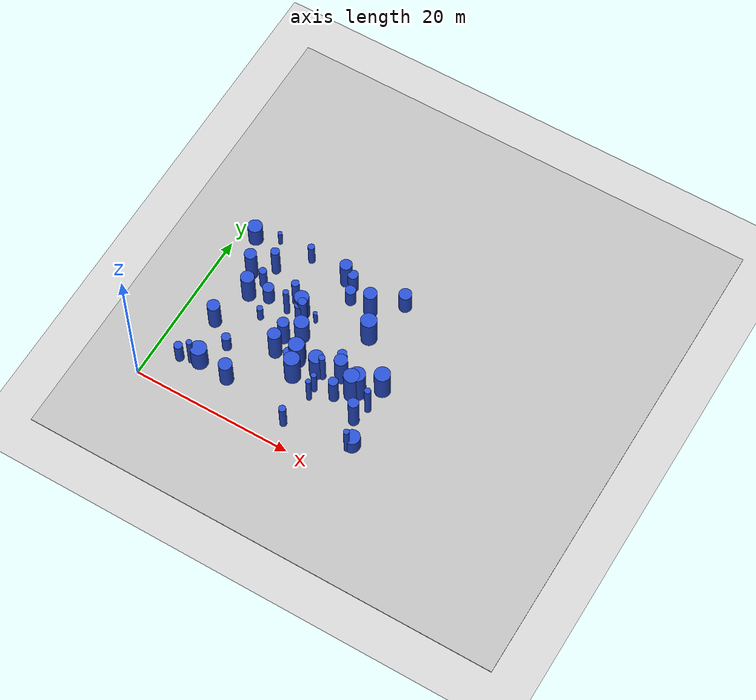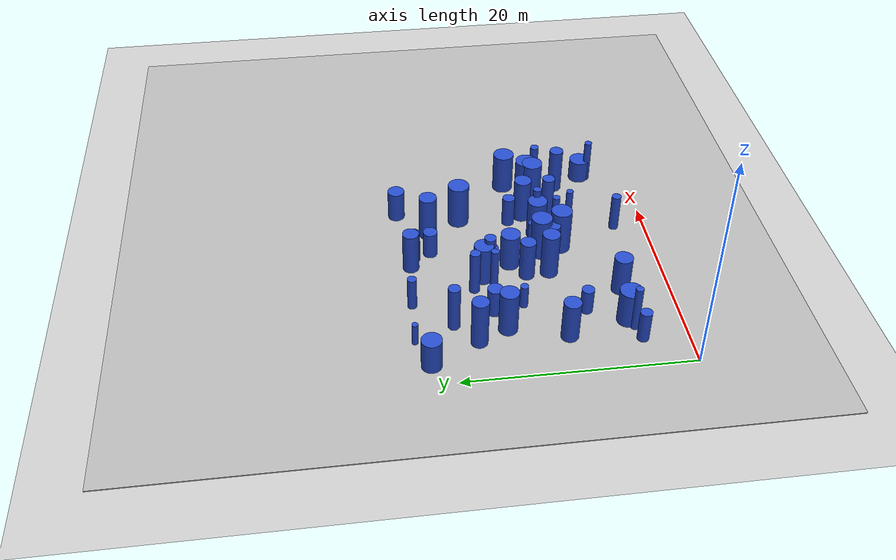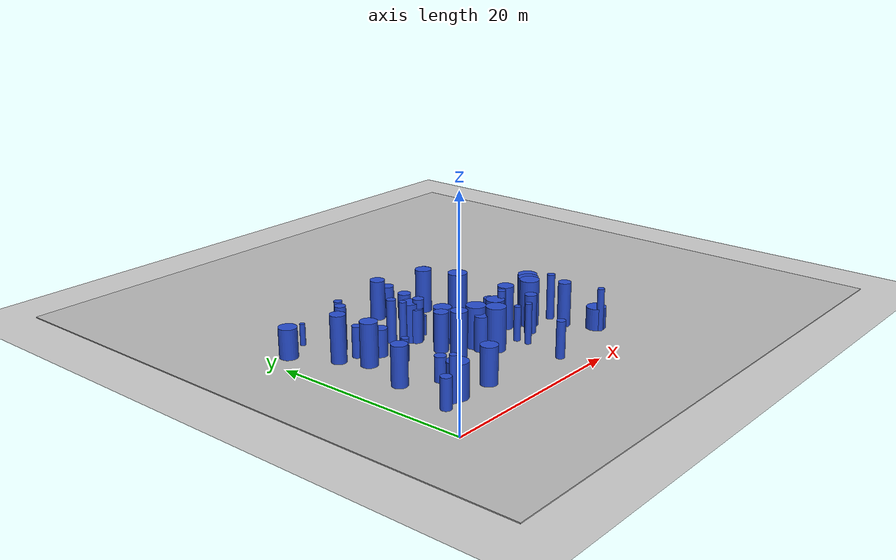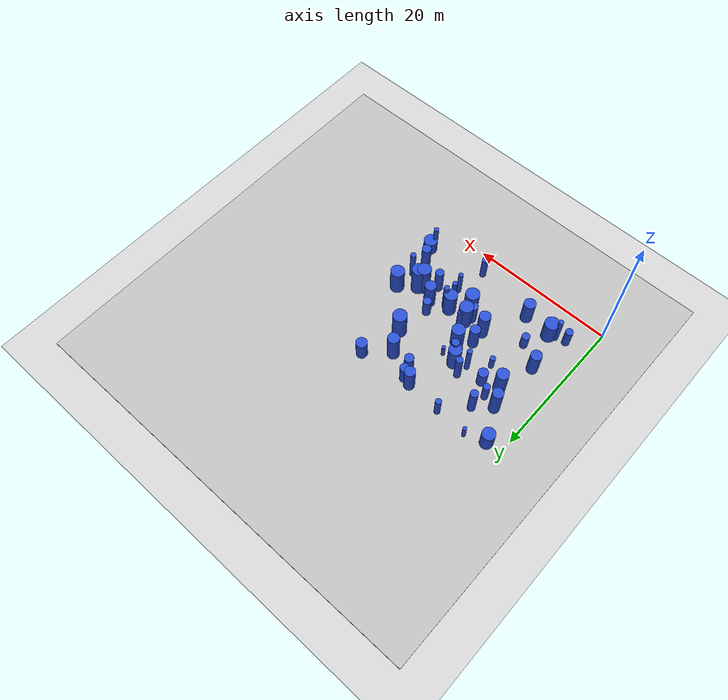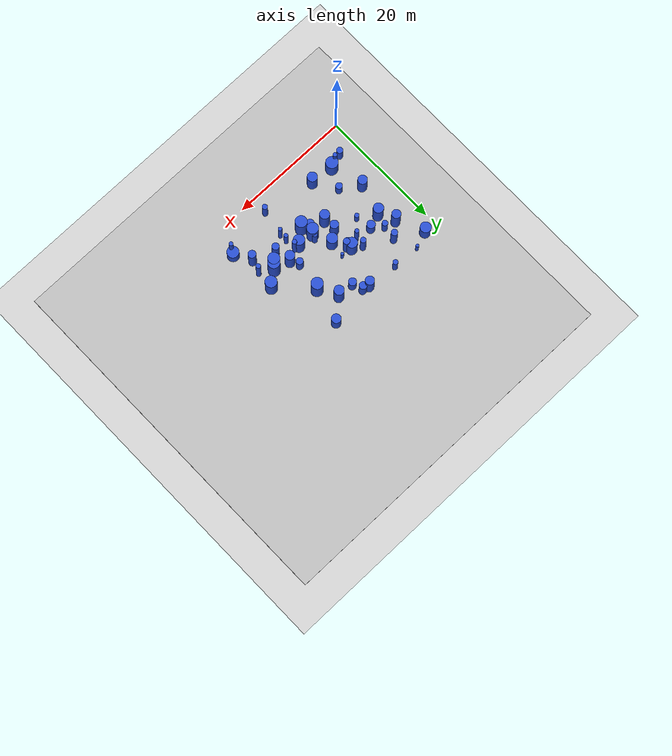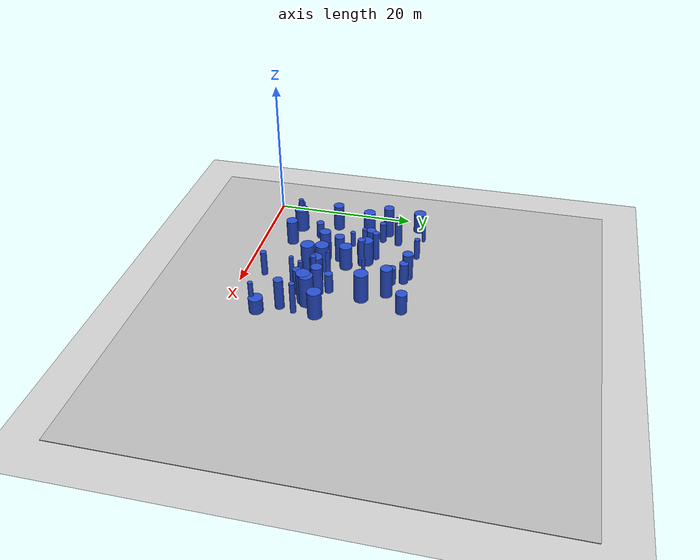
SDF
<sdf version="1.6">
 <world name="default">
  <model name="ground_plane">
   <static>1</static>
   <link name="link">
    <collision name="collision">
     <geometry><plane><normal>0 0 1</normal><size>100 100</size></plane></geometry>
     <surface><friction><ode><mu>100</mu><mu2>50</mu2></ode></friction></surface>
    </collision>
    <visual name="visual">
     <cast_shadows>0</cast_shadows>
     <geometry><plane><normal>0 0 1</normal><size>100 100</size></plane></geometry>
     <material>
      <script><uri>file://media/materials/scripts/gazebo.material</uri><name>Gazebo/Grey</name></script>
     </material>
    </visual>
   </link>
  </model>
  <model name="6">
   <static>0</static>
   <link name="link">
    <inertial>
     <mass>2</mass>
     <inertia><ixx>1.16849</ixx><ixy>0</ixy><ixz>0</ixz><iyy>1.16849</iyy><iyz>0</iyz><izz>0.30328</izz></inertia>
    </inertial>
    <collision name="collision">
     <geometry><cylinder><length>2.47004</length><radius>0.550708</radius></cylinder></geometry>
     <surface><contact><collide_without_contact>1</collide_without_contact></contact></surface>
    </collision>
    <visual name="visual">
     <geometry><cylinder><length>2.47004</length><radius>0.550708</radius></cylinder></geometry>
     <material>
      <script><uri>file://media/materials/scripts/gazebo.material</uri><name>Gazebo/Blue</name></script>
     </material>
    </visual>
    <gravity>0</gravity>
   </link>
   <pose>7.0052 7.97036 1.23502 0 -0 0</pose>
  </model>
  <model name="14">
   <static>0</static>
   <link name="link">
    <inertial>
     <mass>2</mass>
     <inertia>
      <ixx>0.836303</ixx>
      <ixy>0</ixy>
      <ixz>0</ixz>
      <iyy>0.836303</iyy>
      <iyz>0</iyz>
      <izz>0.0702342</izz>
     </inertia>
    </inertial>
    <collision name="collision">
     <geometry><cylinder><length>2.19251</length><radius>0.265017</radius></cylinder></geometry>
     <surface><contact><collide_without_contact>1</collide_without_contact></contact></surface>
    </collision>
    <visual name="visual">
     <geometry><cylinder><length>2.19251</length><radius>0.265017</radius></cylinder></geometry>
     <material>
      <script><uri>file://media/materials/scripts/gazebo.material</uri><name>Gazebo/Blue</name></script>
     </material>
    </visual>
    <gravity>0</gravity>
   </link>
   <pose>4.90241 23.0543 1.09626 0 -0 0</pose>
  </model>
  <model name="28">
   <static>0</static>
   <link name="link">
    <inertial>
     <mass>2</mass>
     <inertia><ixx>1.94852</ixx><ixy>0</ixy><ixz>0</ixz><iyy>1.94852</iyy><iyz>0</iyz><izz>0.176047</izz></inertia>
    </inertial>
    <collision name="collision">
     <geometry><cylinder><length>3.3411</length><radius>0.41958</radius></cylinder></geometry>
     <surface><contact><collide_without_contact>1</collide_without_contact></contact></surface>
    </collision>
    <visual name="visual">
     <geometry><cylinder><length>3.3411</length><radius>0.41958</radius></cylinder></geometry>
     <material>
      <script><uri>file://media/materials/scripts/gazebo.material</uri><name>Gazebo/Blue</name></script>
     </material>
    </visual>
    <gravity>0</gravity>
   </link>
   <pose>14.7068 10.6265 1.67055 0 -0 0</pose>
  </model>
  <model name="32">
   <static>0</static>
   <link name="link">
    <inertial>
     <mass>2</mass>
     <inertia><ixx>3.14804</ixx><ixy>0</ixy><ixz>0</ixz><iyy>3.14804</iyy><iyz>0</iyz><izz>0.2772</izz></inertia>
    </inertial>
    <collision name="collision">
     <geometry><cylinder><length>4.24931</length><radius>0.526498</radius></cylinder></geometry>
     <surface><contact><collide_without_contact>1</collide_without_contact></contact></surface>
    </collision>
    <visual name="visual">
     <geometry><cylinder><length>4.24931</length><radius>0.526498</radius></cylinder></geometry>
     <material>
      <script><uri>file://media/materials/scripts/gazebo.material</uri><name>Gazebo/Blue</name></script>
     </material>
    </visual>
    <gravity>0</gravity>
   </link>
   <pose>12.684 15.5314 2.12466 0 -0 0</pose>
  </model>
  <model name="35">
   <static>0</static>
   <link name="link">
    <inertial>
     <mass>2</mass>
     <inertia><ixx>1.28734</ixx><ixy>0</ixy><ixz>0</ixz><iyy>1.28734</iyy><iyz>0</iyz><izz>0.926556</izz></inertia>
    </inertial>
    <collision name="collision">
     <geometry><cylinder><length>2.22359</length><radius>0.962578</radius></cylinder></geometry>
     <surface><contact><collide_without_contact>1</collide_without_contact></contact></surface>
    </collision>
    <visual name="visual">
     <geometry><cylinder><length>2.22359</length><radius>0.962578</radius></cylinder></geometry>
     <material>
      <script><uri>file://media/materials/scripts/gazebo.material</uri><name>Gazebo/Blue</name></script>
     </material>
    </visual>
    <gravity>0</gravity>
   </link>
   <pose>25.9919 4.41635 1.11179 0 -0 0</pose>
  </model>
  <model name="40">
   <static>0</static>
   <link name="link">
    <inertial>
     <mass>2</mass>
     <inertia><ixx>2.63983</ixx><ixy>0</ixy><ixz>0</ixz><iyy>2.63983</iyy><iyz>0</iyz><izz>0.666975</izz></inertia>
    </inertial>
    <collision name="collision">
     <geometry><cylinder><length>3.71996</length><radius>0.816686</radius></cylinder></geometry>
     <surface><contact><collide_without_contact>1</collide_without_contact></contact></surface>
    </collision>
    <visual name="visual">
     <geometry><cylinder><length>3.71996</length><radius>0.816686</radius></cylinder></geometry>
     <material>
      <script><uri>file://media/materials/scripts/gazebo.material</uri><name>Gazebo/Blue</name></script>
     </material>
    </visual>
    <gravity>0</gravity>
   </link>
   <pose>9.25913 4.38919 1.85998 0 -0 0</pose>
  </model>
  <model name="58">
   <static>0</static>
   <link name="link">
    <inertial>
     <mass>2</mass>
     <inertia><ixx>1.90136</ixx><ixy>0</ixy><ixz>0</ixz><iyy>1.90136</iyy><iyz>0</iyz><izz>0.784577</izz></inertia>
    </inertial>
    <collision name="collision">
     <geometry><cylinder><length>3.00905</length><radius>0.885763</radius></cylinder></geometry>
     <surface><contact><collide_without_contact>1</collide_without_contact></contact></surface>
    </collision>
    <visual name="visual">
     <geometry><cylinder><length>3.00905</length><radius>0.885763</radius></cylinder></geometry>
     <material>
      <script><uri>file://media/materials/scripts/gazebo.material</uri><name>Gazebo/Blue</name></script>
     </material>
    </visual>
    <gravity>0</gravity>
   </link>
   <pose>2.14865 21.9876 1.50453 0 -0 0</pose>
  </model>
  <model name="67">
   <static>0</static>
   <link name="link">
    <inertial>
     <mass>2</mass>
     <inertia><ixx>2.79637</ixx><ixy>0</ixy><ixz>0</ixz><iyy>2.79637</iyy><iyz>0</iyz><izz>0.102595</izz></inertia>
    </inertial>
    <collision name="collision">
     <geometry><cylinder><length>4.05837</length><radius>0.320305</radius></cylinder></geometry>
     <surface><contact><collide_without_contact>1</collide_without_contact></contact></surface>
    </collision>
    <visual name="visual">
     <geometry><cylinder><length>4.05837</length><radius>0.320305</radius></cylinder></geometry>
     <material>
      <script><uri>file://media/materials/scripts/gazebo.material</uri><name>Gazebo/Blue</name></script>
     </material>
    </visual>
    <gravity>0</gravity>
   </link>
   <pose>18.6336 7.11868 2.02919 0 -0 0</pose>
  </model>
  <model name="69">
   <static>0</static>
   <link name="link">
    <inertial>
     <mass>2</mass>
     <inertia><ixx>3.22963</ixx><ixy>0</ixy><ixz>0</ixz><iyy>3.22963</iyy><iyz>0</iyz><izz>0.217421</izz></inertia>
    </inertial>
    <collision name="collision">
     <geometry><cylinder><length>4.3273</length><radius>0.466285</radius></cylinder></geometry>
     <surface><contact><collide_without_contact>1</collide_without_contact></contact></surface>
    </collision>
    <visual name="visual">
     <geometry><cylinder><length>4.3273</length><radius>0.466285</radius></cylinder></geometry>
     <material>
      <script><uri>file://media/materials/scripts/gazebo.material</uri><name>Gazebo/Blue</name></script>
     </material>
    </visual>
    <gravity>0</gravity>
   </link>
   <pose>10.7285 17.1635 2.16365 0 -0 0</pose>
  </model>
  <model name="76">
   <static>0</static>
   <link name="link">
    <inertial>
     <mass>2</mass>
     <inertia><ixx>2.26784</ixx><ixy>0</ixy><ixz>0</ixz><iyy>2.26784</iyy><iyz>0</iyz><izz>0.465328</izz></inertia>
    </inertial>
    <collision name="collision">
     <geometry><cylinder><length>3.49443</length><radius>0.68215</radius></cylinder></geometry>
     <surface><contact><collide_without_contact>1</collide_without_contact></contact></surface>
    </collision>
    <visual name="visual">
     <geometry><cylinder><length>3.49443</length><radius>0.68215</radius></cylinder></geometry>
     <material>
      <script><uri>file://media/materials/scripts/gazebo.material</uri><name>Gazebo/Blue</name></script>
     </material>
    </visual>
    <gravity>0</gravity>
   </link>
   <pose>14.5999 9.48681 1.74722 0 -0 0</pose>
  </model>
  <model name="80">
   <static>0</static>
   <link name="link">
    <inertial>
     <mass>2</mass>
     <inertia><ixx>3.71121</ixx><ixy>0</ixy><ixz>0</ixz><iyy>3.71121</iyy><iyz>0</iyz><izz>0.629149</izz></inertia>
    </inertial>
    <collision name="collision">
     <geometry><cylinder><length>4.5144</length><radius>0.793189</radius></cylinder></geometry>
     <surface><contact><collide_without_contact>1</collide_without_contact></contact></surface>
    </collision>
    <visual name="visual">
     <geometry><cylinder><length>4.5144</length><radius>0.793189</radius></cylinder></geometry>
     <material>
      <script><uri>file://media/materials/scripts/gazebo.material</uri><name>Gazebo/Blue</name></script>
     </material>
    </visual>
    <gravity>0</gravity>
   </link>
   <pose>12.2104 10.1975 2.2572 0 -0 0</pose>
  </model>
  <model name="81">
   <static>0</static>
   <link name="link">
    <inertial>
     <mass>2</mass>
     <inertia><ixx>2.09463</ixx><ixy>0</ixy><ixz>0</ixz><iyy>2.09463</iyy><iyz>0</iyz><izz>0.116243</izz></inertia>
    </inertial>
    <collision name="collision">
     <geometry><cylinder><length>3.49558</length><radius>0.340944</radius></cylinder></geometry>
     <surface><contact><collide_without_contact>1</collide_without_contact></contact></surface>
    </collision>
    <visual name="visual">
     <geometry><cylinder><length>3.49558</length><radius>0.340944</radius></cylinder></geometry>
     <material>
      <script><uri>file://media/materials/scripts/gazebo.material</uri><name>Gazebo/Blue</name></script>
     </material>
    </visual>
    <gravity>0</gravity>
   </link>
   <pose>18.5804 8.35897 1.74779 0 -0 0</pose>
  </model>
  <model name="86">
   <static>0</static>
   <link name="link">
    <inertial>
     <mass>2</mass>
     <inertia><ixx>1.70084</ixx><ixy>0</ixy><ixz>0</ixz><iyy>1.70084</iyy><iyz>0</iyz><izz>0.217344</izz></inertia>
    </inertial>
    <collision name="collision">
     <geometry><cylinder><length>3.09079</length><radius>0.466202</radius></cylinder></geometry>
     <surface><contact><collide_without_contact>1</collide_without_contact></contact></surface>
    </collision>
    <visual name="visual">
     <geometry><cylinder><length>3.09079</length><radius>0.466202</radius></cylinder></geometry>
     <material>
      <script><uri>file://media/materials/scripts/gazebo.material</uri><name>Gazebo/Blue</name></script>
     </material>
    </visual>
    <gravity>0</gravity>
   </link>
   <pose>6.19283 17.2437 1.5454 0 -0 0</pose>
  </model>
  <model name="98">
   <static>0</static>
   <link name="link">
    <inertial>
     <mass>2</mass>
     <inertia><ixx>3.32763</ixx><ixy>0</ixy><ixz>0</ixz><iyy>3.32763</iyy><iyz>0</iyz><izz>0.121645</izz></inertia>
    </inertial>
    <collision name="collision">
     <geometry><cylinder><length>4.42729</length><radius>0.348777</radius></cylinder></geometry>
     <surface><contact><collide_without_contact>1</collide_without_contact></contact></surface>
    </collision>
    <visual name="visual">
     <geometry><cylinder><length>4.42729</length><radius>0.348777</radius></cylinder></geometry>
     <material>
      <script><uri>file://media/materials/scripts/gazebo.material</uri><name>Gazebo/Blue</name></script>
     </material>
    </visual>
    <gravity>0</gravity>
   </link>
   <pose>4.45743 4.36938 2.21364 0 -0 0</pose>
  </model>
  <model name="108">
   <static>0</static>
   <link name="link">
    <inertial>
     <mass>2</mass>
     <inertia><ixx>2.89097</ixx><ixy>0</ixy><ixz>0</ixz><iyy>2.89097</iyy><iyz>0</iyz><izz>0.769265</izz></inertia>
    </inertial>
    <collision name="collision">
     <geometry><cylinder><length>3.87789</length><radius>0.877078</radius></cylinder></geometry>
     <surface><contact><collide_without_contact>1</collide_without_contact></contact></surface>
    </collision>
    <visual name="visual">
     <geometry><cylinder><length>3.87789</length><radius>0.877078</radius></cylinder></geometry>
     <material>
      <script><uri>file://media/materials/scripts/gazebo.material</uri><name>Gazebo/Blue</name></script>
     </material>
    </visual>
    <gravity>0</gravity>
   </link>
   <pose>12.1664 16.1752 1.93895 0 -0 0</pose>
  </model>
  <model name="110">
   <static>0</static>
   <link name="link">
    <inertial>
     <mass>2</mass>
     <inertia><ixx>3.46082</ixx><ixy>0</ixy><ixz>0</ixz><iyy>3.46082</iyy><iyz>0</iyz><izz>0.623462</izz></inertia>
    </inertial>
    <collision name="collision">
     <geometry><cylinder><length>4.34679</length><radius>0.789596</radius></cylinder></geometry>
     <surface><contact><collide_without_contact>1</collide_without_contact></contact></surface>
    </collision>
    <visual name="visual">
     <geometry><cylinder><length>4.34679</length><radius>0.789596</radius></cylinder></geometry>
     <material>
      <script><uri>file://media/materials/scripts/gazebo.material</uri><name>Gazebo/Blue</name></script>
     </material>
    </visual>
    <gravity>0</gravity>
   </link>
   <pose>20.4546 11.2162 2.17339 0 -0 0</pose>
  </model>
  <model name="111">
   <static>0</static>
   <link name="link">
    <inertial>
     <mass>2</mass>
     <inertia><ixx>1.61305</ixx><ixy>0</ixy><ixz>0</ixz><iyy>1.61305</iyy><iyz>0</iyz><izz>0.331208</izz></inertia>
    </inertial>
    <collision name="collision">
     <geometry><cylinder><length>2.94697</length><radius>0.575506</radius></cylinder></geometry>
     <surface><contact><collide_without_contact>1</collide_without_contact></contact></surface>
    </collision>
    <visual name="visual">
     <geometry><cylinder><length>2.94697</length><radius>0.575506</radius></cylinder></geometry>
     <material>
      <script><uri>file://media/materials/scripts/gazebo.material</uri><name>Gazebo/Blue</name></script>
     </material>
    </visual>
    <gravity>0</gravity>
   </link>
   <pose>19.7444 12.6258 1.47349 0 -0 0</pose>
  </model>
  <model name="121">
   <static>0</static>
   <link name="link">
    <inertial>
     <mass>2</mass>
     <inertia>
      <ixx>0.701249</ixx>
      <ixy>0</ixy>
      <ixz>0</ixz>
      <iyy>0.701249</iyy>
      <iyz>0</iyz>
      <izz>0.0646593</izz>
     </inertia>
    </inertial>
    <collision name="collision">
     <geometry><cylinder><length>2.00338</length><radius>0.254282</radius></cylinder></geometry>
     <surface><contact><collide_without_contact>1</collide_without_contact></contact></surface>
    </collision>
    <visual name="visual">
     <geometry><cylinder><length>2.00338</length><radius>0.254282</radius></cylinder></geometry>
     <material>
      <script><uri>file://media/materials/scripts/gazebo.material</uri><name>Gazebo/Blue</name></script>
     </material>
    </visual>
    <gravity>0</gravity>
   </link>
   <pose>14.0322 16.041 1.00169 0 -0 0</pose>
  </model>
  <model name="122">
   <static>0</static>
   <link name="link">
    <inertial>
     <mass>2</mass>
     <inertia><ixx>3.02054</ixx><ixy>0</ixy><ixz>0</ixz><iyy>3.02054</iyy><iyz>0</iyz><izz>0.797746</izz></inertia>
    </inertial>
    <collision name="collision">
     <geometry><cylinder><length>3.9661</length><radius>0.893166</radius></cylinder></geometry>
     <surface><contact><collide_without_contact>1</collide_without_contact></contact></surface>
    </collision>
    <visual name="visual">
     <geometry><cylinder><length>3.9661</length><radius>0.893166</radius></cylinder></geometry>
     <material>
      <script><uri>file://media/materials/scripts/gazebo.material</uri><name>Gazebo/Blue</name></script>
     </material>
    </visual>
    <gravity>0</gravity>
   </link>
   <pose>17.7023 10.3334 1.98305 0 -0 0</pose>
  </model>
  <model name="124">
   <static>0</static>
   <link name="link">
    <inertial>
     <mass>2</mass>
     <inertia><ixx>3.6875</ixx><ixy>0</ixy><ixz>0</ixz><iyy>3.6875</iyy><iyz>0</iyz><izz>0.151865</izz></inertia>
    </inertial>
    <collision name="collision">
     <geometry><cylinder><length>4.65504</length><radius>0.389699</radius></cylinder></geometry>
     <surface><contact><collide_without_contact>1</collide_without_contact></contact></surface>
    </collision>
    <visual name="visual">
     <geometry><cylinder><length>4.65504</length><radius>0.389699</radius></cylinder></geometry>
     <material>
      <script><uri>file://media/materials/scripts/gazebo.material</uri><name>Gazebo/Blue</name></script>
     </material>
    </visual>
    <gravity>0</gravity>
   </link>
   <pose>25.1592 9.2284 2.32752 0 -0 0</pose>
  </model>
  <model name="137">
   <static>0</static>
   <link name="link">
    <inertial>
     <mass>2</mass>
     <inertia><ixx>3.57417</ixx><ixy>0</ixy><ixz>0</ixz><iyy>3.57417</iyy><iyz>0</iyz><izz>0.404861</izz></inertia>
    </inertial>
    <collision name="collision">
     <geometry><cylinder><length>4.49783</length><radius>0.636287</radius></cylinder></geometry>
     <surface><contact><collide_without_contact>1</collide_without_contact></contact></surface>
    </collision>
    <visual name="visual">
     <geometry><cylinder><length>4.49783</length><radius>0.636287</radius></cylinder></geometry>
     <material>
      <script><uri>file://media/materials/scripts/gazebo.material</uri><name>Gazebo/Blue</name></script>
     </material>
    </visual>
    <gravity>0</gravity>
   </link>
   <pose>24.5313 7.18181 2.24891 0 -0 0</pose>
  </model>
  <model name="139">
   <static>0</static>
   <link name="link">
    <inertial>
     <mass>2</mass>
     <inertia><ixx>2.7254</ixx><ixy>0</ixy><ixz>0</ixz><iyy>2.7254</iyy><iyz>0</iyz><izz>0.347029</izz></inertia>
    </inertial>
    <collision name="collision">
     <geometry><cylinder><length>3.91297</length><radius>0.589092</radius></cylinder></geometry>
     <surface><contact><collide_without_contact>1</collide_without_contact></contact></surface>
    </collision>
    <visual name="visual">
     <geometry><cylinder><length>3.91297</length><radius>0.589092</radius></cylinder></geometry>
     <material>
      <script><uri>file://media/materials/scripts/gazebo.material</uri><name>Gazebo/Blue</name></script>
     </material>
    </visual>
    <gravity>0</gravity>
   </link>
   <pose>21.0016 8.62317 1.95648 0 -0 0</pose>
  </model>
  <model name="142">
   <static>0</static>
   <link name="link">
    <inertial>
     <mass>2</mass>
     <inertia><ixx>2.45958</ixx><ixy>0</ixy><ixz>0</ixz><iyy>2.45958</iyy><iyz>0</iyz><izz>0.99276</izz></inertia>
    </inertial>
    <collision name="collision">
     <geometry><cylinder><length>3.43208</length><radius>0.996374</radius></cylinder></geometry>
     <surface><contact><collide_without_contact>1</collide_without_contact></contact></surface>
    </collision>
    <visual name="visual">
     <geometry><cylinder><length>3.43208</length><radius>0.996374</radius></cylinder></geometry>
     <material>
      <script><uri>file://media/materials/scripts/gazebo.material</uri><name>Gazebo/Blue</name></script>
     </material>
    </visual>
    <gravity>0</gravity>
   </link>
   <pose>5.41598 4.70127 1.71604 0 -0 0</pose>
  </model>
  <model name="143">
   <static>0</static>
   <link name="link">
    <inertial>
     <mass>2</mass>
     <inertia><ixx>2.80765</ixx><ixy>0</ixy><ixz>0</ixz><iyy>2.80765</iyy><iyz>0</iyz><izz>0.487148</izz></inertia>
    </inertial>
    <collision name="collision">
     <geometry><cylinder><length>3.9223</length><radius>0.69796</radius></cylinder></geometry>
     <surface><contact><collide_without_contact>1</collide_without_contact></contact></surface>
    </collision>
    <visual name="visual">
     <geometry><cylinder><length>3.9223</length><radius>0.69796</radius></cylinder></geometry>
     <material>
      <script><uri>file://media/materials/scripts/gazebo.material</uri><name>Gazebo/Blue</name></script>
     </material>
    </visual>
    <gravity>0</gravity>
   </link>
   <pose>12.1102 12.2397 1.96115 0 -0 0</pose>
  </model>
  <model name="148">
   <static>0</static>
   <link name="link">
    <inertial>
     <mass>2</mass>
     <inertia><ixx>4.08409</ixx><ixy>0</ixy><ixz>0</ixz><iyy>4.08409</iyy><iyz>0</iyz><izz>0.951518</izz></inertia>
    </inertial>
    <collision name="collision">
     <geometry><cylinder><length>4.65295</length><radius>0.975458</radius></cylinder></geometry>
     <surface><contact><collide_without_contact>1</collide_without_contact></contact></surface>
    </collision>
    <visual name="visual">
     <geometry><cylinder><length>4.65295</length><radius>0.975458</radius></cylinder></geometry>
     <material>
      <script><uri>file://media/materials/scripts/gazebo.material</uri><name>Gazebo/Blue</name></script>
     </material>
    </visual>
    <gravity>0</gravity>
   </link>
   <pose>23.0698 10.4532 2.32648 0 -0 0</pose>
  </model>
  <model name="150">
   <static>0</static>
   <link name="link">
    <inertial>
     <mass>2</mass>
     <inertia><ixx>3.53297</ixx><ixy>0</ixy><ixz>0</ixz><iyy>3.53297</iyy><iyz>0</iyz><izz>0.946006</izz></inertia>
    </inertial>
    <collision name="collision">
     <geometry><cylinder><length>4.28484</length><radius>0.972629</radius></cylinder></geometry>
     <surface><contact><collide_without_contact>1</collide_without_contact></contact></surface>
    </collision>
    <visual name="visual">
     <geometry><cylinder><length>4.28484</length><radius>0.972629</radius></cylinder></geometry>
     <material>
      <script><uri>file://media/materials/scripts/gazebo.material</uri><name>Gazebo/Blue</name></script>
     </material>
    </visual>
    <gravity>0</gravity>
   </link>
   <pose>20.5094 17.2649 2.14242 0 -0 0</pose>
  </model>
  <model name="156">
   <static>0</static>
   <link name="link">
    <inertial>
     <mass>2</mass>
     <inertia><ixx>2.3637</ixx><ixy>0</ixy><ixz>0</ixz><iyy>2.3637</iyy><iyz>0</iyz><izz>0.186598</izz></inertia>
    </inertial>
    <collision name="collision">
     <geometry><cylinder><length>3.69085</length><radius>0.431969</radius></cylinder></geometry>
     <surface><contact><collide_without_contact>1</collide_without_contact></contact></surface>
    </collision>
    <visual name="visual">
     <geometry><cylinder><length>3.69085</length><radius>0.431969</radius></cylinder></geometry>
     <material>
      <script><uri>file://media/materials/scripts/gazebo.material</uri><name>Gazebo/Blue</name></script>
     </material>
    </visual>
    <gravity>0</gravity>
   </link>
   <pose>17.8167 2.86989 1.84543 0 -0 0</pose>
  </model>
  <model name="158">
   <static>0</static>
   <link name="link">
    <inertial>
     <mass>2</mass>
     <inertia><ixx>4.07295</ixx><ixy>0</ixy><ixz>0</ixz><iyy>4.07295</iyy><iyz>0</iyz><izz>0.902413</izz></inertia>
    </inertial>
    <collision name="collision">
     <geometry><cylinder><length>4.66159</length><radius>0.949954</radius></cylinder></geometry>
     <surface><contact><collide_without_contact>1</collide_without_contact></contact></surface>
    </collision>
    <visual name="visual">
     <geometry><cylinder><length>4.66159</length><radius>0.949954</radius></cylinder></geometry>
     <material>
      <script><uri>file://media/materials/scripts/gazebo.material</uri><name>Gazebo/Blue</name></script>
     </material>
    </visual>
    <gravity>0</gravity>
   </link>
   <pose>22.6072 9.96097 2.3308 0 -0 0</pose>
  </model>
  <model name="163">
   <static>0</static>
   <link name="link">
    <inertial>
     <mass>2</mass>
     <inertia><ixx>3.32373</ixx><ixy>0</ixy><ixz>0</ixz><iyy>3.32373</iyy><iyz>0</iyz><izz>0.890012</izz></inertia>
    </inertial>
    <collision name="collision">
     <geometry><cylinder><length>4.156</length><radius>0.943405</radius></cylinder></geometry>
     <surface><contact><collide_without_contact>1</collide_without_contact></contact></surface>
    </collision>
    <visual name="visual">
     <geometry><cylinder><length>4.156</length><radius>0.943405</radius></cylinder></geometry>
     <material>
      <script><uri>file://media/materials/scripts/gazebo.material</uri><name>Gazebo/Blue</name></script>
     </material>
    </visual>
    <gravity>0</gravity>
   </link>
   <pose>14.9851 10.467 2.078 0 -0 0</pose>
  </model>
  <model name="168">
   <static>0</static>
   <link name="link">
    <inertial>
     <mass>2</mass>
     <inertia><ixx>1.88036</ixx><ixy>0</ixy><ixz>0</ixz><iyy>1.88036</iyy><iyz>0</iyz><izz>0.387286</izz></inertia>
    </inertial>
    <collision name="collision">
     <geometry><cylinder><length>3.18124</length><radius>0.622323</radius></cylinder></geometry>
     <surface><contact><collide_without_contact>1</collide_without_contact></contact></surface>
    </collision>
    <visual name="visual">
     <geometry><cylinder><length>3.18124</length><radius>0.622323</radius></cylinder></geometry>
     <material>
      <script><uri>file://media/materials/scripts/gazebo.material</uri><name>Gazebo/Blue</name></script>
     </material>
    </visual>
    <gravity>0</gravity>
   </link>
   <pose>15.4862 22.0829 1.59062 0 -0 0</pose>
  </model>
  <model name="173">
   <static>0</static>
   <link name="link">
    <inertial>
     <mass>2</mass>
     <inertia><ixx>3.90189</ixx><ixy>0</ixy><ixz>0</ixz><iyy>3.90189</iyy><iyz>0</iyz><izz>0.540275</izz></inertia>
    </inertial>
    <collision name="collision">
     <geometry><cylinder><length>4.66803</length><radius>0.735034</radius></cylinder></geometry>
     <surface><contact><collide_without_contact>1</collide_without_contact></contact></surface>
    </collision>
    <visual name="visual">
     <geometry><cylinder><length>4.66803</length><radius>0.735034</radius></cylinder></geometry>
     <material>
      <script><uri>file://media/materials/scripts/gazebo.material</uri><name>Gazebo/Blue</name></script>
     </material>
    </visual>
    <gravity>0</gravity>
   </link>
   <pose>4.30772 17.7082 2.33402 0 -0 0</pose>
  </model>
  <model name="177">
   <static>0</static>
   <link name="link">
    <inertial>
     <mass>2</mass>
     <inertia><ixx>0.95271</ixx><ixy>0</ixy><ixz>0</ixz><iyy>0.95271</iyy><iyz>0</iyz><izz>0.135392</izz></inertia>
    </inertial>
    <collision name="collision">
     <geometry><cylinder><length>2.30436</length><radius>0.367956</radius></cylinder></geometry>
     <surface><contact><collide_without_contact>1</collide_without_contact></contact></surface>
    </collision>
    <visual name="visual">
     <geometry><cylinder><length>2.30436</length><radius>0.367956</radius></cylinder></geometry>
     <material>
      <script><uri>file://media/materials/scripts/gazebo.material</uri><name>Gazebo/Blue</name></script>
     </material>
    </visual>
    <gravity>0</gravity>
   </link>
   <pose>8.26384 13.2308 1.15218 0 -0 0</pose>
  </model>
  <model name="184">
   <static>0</static>
   <link name="link">
    <inertial>
     <mass>2</mass>
     <inertia><ixx>1.34764</ixx><ixy>0</ixy><ixz>0</ixz><iyy>1.34764</iyy><iyz>0</iyz><izz>0.412127</izz></inertia>
    </inertial>
    <collision name="collision">
     <geometry><cylinder><length>2.61714</length><radius>0.641971</radius></cylinder></geometry>
     <surface><contact><collide_without_contact>1</collide_without_contact></contact></surface>
    </collision>
    <visual name="visual">
     <geometry><cylinder><length>2.61714</length><radius>0.641971</radius></cylinder></geometry>
     <material>
      <script><uri>file://media/materials/scripts/gazebo.material</uri><name>Gazebo/Blue</name></script>
     </material>
    </visual>
    <gravity>0</gravity>
   </link>
   <pose>16.1297 20.4453 1.30857 0 -0 0</pose>
  </model>
  <model name="185">
   <static>0</static>
   <link name="link">
    <inertial>
     <mass>2</mass>
     <inertia><ixx>2.98915</ixx><ixy>0</ixy><ixz>0</ixz><iyy>2.98915</iyy><iyz>0</iyz><izz>0.538537</izz></inertia>
    </inertial>
    <collision name="collision">
     <geometry><cylinder><length>4.03971</length><radius>0.73385</radius></cylinder></geometry>
     <surface><contact><collide_without_contact>1</collide_without_contact></contact></surface>
    </collision>
    <visual name="visual">
     <geometry><cylinder><length>4.03971</length><radius>0.73385</radius></cylinder></geometry>
     <material>
      <script><uri>file://media/materials/scripts/gazebo.material</uri><name>Gazebo/Blue</name></script>
     </material>
    </visual>
    <gravity>0</gravity>
   </link>
   <pose>14.375 22.3936 2.01986 0 -0 0</pose>
  </model>
  <model name="189">
   <static>0</static>
   <link name="link">
    <inertial>
     <mass>2</mass>
     <inertia><ixx>2.52915</ixx><ixy>0</ixy><ixz>0</ixz><iyy>2.52915</iyy><iyz>0</iyz><izz>0.784996</izz></inertia>
    </inertial>
    <collision name="collision">
     <geometry><cylinder><length>3.58049</length><radius>0.886</radius></cylinder></geometry>
     <surface><contact><collide_without_contact>1</collide_without_contact></contact></surface>
    </collision>
    <visual name="visual">
     <geometry><cylinder><length>3.58049</length><radius>0.886</radius></cylinder></geometry>
     <material>
      <script><uri>file://media/materials/scripts/gazebo.material</uri><name>Gazebo/Blue</name></script>
     </material>
    </visual>
    <gravity>0</gravity>
   </link>
   <pose>13.7865 13.5097 1.79025 0 -0 0</pose>
  </model>
  <model name="192">
   <static>0</static>
   <link name="link">
    <inertial>
     <mass>2</mass>
     <inertia><ixx>1.66723</ixx><ixy>0</ixy><ixz>0</ixz><iyy>1.66723</iyy><iyz>0</iyz><izz>0.270355</izz></inertia>
    </inertial>
    <collision name="collision">
     <geometry><cylinder><length>3.03188</length><radius>0.519957</radius></cylinder></geometry>
     <surface><contact><collide_without_contact>1</collide_without_contact></contact></surface>
    </collision>
    <visual name="visual">
     <geometry><cylinder><length>3.03188</length><radius>0.519957</radius></cylinder></geometry>
     <material>
      <script><uri>file://media/materials/scripts/gazebo.material</uri><name>Gazebo/Blue</name></script>
     </material>
    </visual>
    <gravity>0</gravity>
   </link>
   <pose>3.09771 4.0201 1.51594 0 -0 0</pose>
  </model>
  <model name="204">
   <static>0</static>
   <link name="link">
    <inertial>
     <mass>2</mass>
     <inertia><ixx>1.82067</ixx><ixy>0</ixy><ixz>0</ixz><iyy>1.82067</iyy><iyz>0</iyz><izz>0.591896</izz></inertia>
    </inertial>
    <collision name="collision">
     <geometry><cylinder><length>3.02462</length><radius>0.769348</radius></cylinder></geometry>
     <surface><contact><collide_without_contact>1</collide_without_contact></contact></surface>
    </collision>
    <visual name="visual">
     <geometry><cylinder><length>3.02462</length><radius>0.769348</radius></cylinder></geometry>
     <material>
      <script><uri>file://media/materials/scripts/gazebo.material</uri><name>Gazebo/Blue</name></script>
     </material>
    </visual>
    <gravity>0</gravity>
   </link>
   <pose>21.9823 22.9997 1.51231 0 -0 0</pose>
  </model>
  <model name="209">
   <static>0</static>
   <link name="link">
    <inertial>
     <mass>2</mass>
     <inertia><ixx>3.14662</ixx><ixy>0</ixy><ixz>0</ixz><iyy>3.14662</iyy><iyz>0</iyz><izz>0.116666</izz></inertia>
    </inertial>
    <collision name="collision">
     <geometry><cylinder><length>4.30462</length><radius>0.341565</radius></cylinder></geometry>
     <surface><contact><collide_without_contact>1</collide_without_contact></contact></surface>
    </collision>
    <visual name="visual">
     <geometry><cylinder><length>4.30462</length><radius>0.341565</radius></cylinder></geometry>
     <material>
      <script><uri>file://media/materials/scripts/gazebo.material</uri><name>Gazebo/Blue</name></script>
     </material>
    </visual>
    <gravity>0</gravity>
   </link>
   <pose>25.6871 3.76018 2.15231 0 -0 0</pose>
  </model>
  <model name="210">
   <static>0</static>
   <link name="link">
    <inertial>
     <mass>2</mass>
     <inertia><ixx>1.78793</ixx><ixy>0</ixy><ixz>0</ixz><iyy>1.78793</iyy><iyz>0</iyz><izz>0.167015</izz></inertia>
    </inertial>
    <collision name="collision">
     <geometry><cylinder><length>3.1979</length><radius>0.408674</radius></cylinder></geometry>
     <surface><contact><collide_without_contact>1</collide_without_contact></contact></surface>
    </collision>
    <visual name="visual">
     <geometry><cylinder><length>3.1979</length><radius>0.408674</radius></cylinder></geometry>
     <material>
      <script><uri>file://media/materials/scripts/gazebo.material</uri><name>Gazebo/Blue</name></script>
     </material>
    </visual>
    <gravity>0</gravity>
   </link>
   <pose>9.36745 22.8219 1.59895 0 -0 0</pose>
  </model>
  <model name="218">
   <static>0</static>
   <link name="link">
    <inertial>
     <mass>2</mass>
     <inertia><ixx>3.32031</ixx><ixy>0</ixy><ixz>0</ixz><iyy>3.32031</iyy><iyz>0</iyz><izz>0.28159</izz></inertia>
    </inertial>
    <collision name="collision">
     <geometry><cylinder><length>4.36773</length><radius>0.530651</radius></cylinder></geometry>
     <surface><contact><collide_without_contact>1</collide_without_contact></contact></surface>
    </collision>
    <visual name="visual">
     <geometry><cylinder><length>4.36773</length><radius>0.530651</radius></cylinder></geometry>
     <material>
      <script><uri>file://media/materials/scripts/gazebo.material</uri><name>Gazebo/Blue</name></script>
     </material>
    </visual>
    <gravity>0</gravity>
   </link>
   <pose>6.48457 19.5668 2.18387 0 -0 0</pose>
  </model>
  <model name="226">
   <static>0</static>
   <link name="link">
    <inertial>
     <mass>2</mass>
     <inertia><ixx>2.07399</ixx><ixy>0</ixy><ixz>0</ixz><iyy>2.07399</iyy><iyz>0</iyz><izz>0.204974</izz></inertia>
    </inertial>
    <collision name="collision">
     <geometry><cylinder><length>3.43933</length><radius>0.45274</radius></cylinder></geometry>
     <surface><contact><collide_without_contact>1</collide_without_contact></contact></surface>
    </collision>
    <visual name="visual">
     <geometry><cylinder><length>3.43933</length><radius>0.45274</radius></cylinder></geometry>
     <material>
      <script><uri>file://media/materials/scripts/gazebo.material</uri><name>Gazebo/Blue</name></script>
     </material>
    </visual>
    <gravity>0</gravity>
   </link>
   <pose>15.2359 11.1873 1.71967 0 -0 0</pose>
  </model>
  <model name="227">
   <static>0</static>
   <link name="link">
    <inertial>
     <mass>2</mass>
     <inertia><ixx>3.09174</ixx><ixy>0</ixy><ixz>0</ixz><iyy>3.09174</iyy><iyz>0</iyz><izz>0.922081</izz></inertia>
    </inertial>
    <collision name="collision">
     <geometry><cylinder><length>3.97293</length><radius>0.960251</radius></cylinder></geometry>
     <surface><contact><collide_without_contact>1</collide_without_contact></contact></surface>
    </collision>
    <visual name="visual">
     <geometry><cylinder><length>3.97293</length><radius>0.960251</radius></cylinder></geometry>
     <material>
      <script><uri>file://media/materials/scripts/gazebo.material</uri><name>Gazebo/Blue</name></script>
     </material>
    </visual>
    <gravity>0</gravity>
   </link>
   <pose>25.3181 12.2082 1.98646 0 -0 0</pose>
  </model>
  <model name="228">
   <static>0</static>
   <link name="link">
    <inertial>
     <mass>2</mass>
     <inertia><ixx>3.586</ixx><ixy>0</ixy><ixz>0</ixz><iyy>3.586</iyy><iyz>0</iyz><izz>0.906803</izz></inertia>
    </inertial>
    <collision name="collision">
     <geometry><cylinder><length>4.33539</length><radius>0.952262</radius></cylinder></geometry>
     <surface><contact><collide_without_contact>1</collide_without_contact></contact></surface>
    </collision>
    <visual name="visual">
     <geometry><cylinder><length>4.33539</length><radius>0.952262</radius></cylinder></geometry>
     <material>
      <script><uri>file://media/materials/scripts/gazebo.material</uri><name>Gazebo/Blue</name></script>
     </material>
    </visual>
    <gravity>0</gravity>
   </link>
   <pose>15.5517 8.53745 2.16769 0 -0 0</pose>
  </model>
  <model name="232">
   <static>0</static>
   <link name="link">
    <inertial>
     <mass>2</mass>
     <inertia><ixx>3.41433</ixx><ixy>0</ixy><ixz>0</ixz><iyy>3.41433</iyy><iyz>0</iyz><izz>0.690269</izz></inertia>
    </inertial>
    <collision name="collision">
     <geometry><cylinder><length>4.29129</length><radius>0.830824</radius></cylinder></geometry>
     <surface><contact><collide_without_contact>1</collide_without_contact></contact></surface>
    </collision>
    <visual name="visual">
     <geometry><cylinder><length>4.29129</length><radius>0.830824</radius></cylinder></geometry>
     <material>
      <script><uri>file://media/materials/scripts/gazebo.material</uri><name>Gazebo/Blue</name></script>
     </material>
    </visual>
    <gravity>0</gravity>
   </link>
   <pose>5.53066 15.0773 2.14565 0 -0 0</pose>
  </model>
  <model name="233">
   <static>0</static>
   <link name="link">
    <inertial>
     <mass>2</mass>
     <inertia><ixx>3.66033</ixx><ixy>0</ixy><ixz>0</ixz><iyy>3.66033</iyy><iyz>0</iyz><izz>0.144052</izz></inertia>
    </inertial>
    <collision name="collision">
     <geometry><cylinder><length>4.64003</length><radius>0.379542</radius></cylinder></geometry>
     <surface><contact><collide_without_contact>1</collide_without_contact></contact></surface>
    </collision>
    <visual name="visual">
     <geometry><cylinder><length>4.64003</length><radius>0.379542</radius></cylinder></geometry>
     <material>
      <script><uri>file://media/materials/scripts/gazebo.material</uri><name>Gazebo/Blue</name></script>
     </material>
    </visual>
    <gravity>0</gravity>
   </link>
   <pose>18.5501 10.2334 2.32001 0 -0 0</pose>
  </model>
  <model name="236">
   <static>0</static>
   <link name="link">
    <inertial>
     <mass>2</mass>
     <inertia><ixx>3.5821</ixx><ixy>0</ixy><ixz>0</ixz><iyy>3.5821</iyy><iyz>0</iyz><izz>0.659814</izz></inertia>
    </inertial>
    <collision name="collision">
     <geometry><cylinder><length>4.41737</length><radius>0.812289</radius></cylinder></geometry>
     <surface><contact><collide_without_contact>1</collide_without_contact></contact></surface>
    </collision>
    <visual name="visual">
     <geometry><cylinder><length>4.41737</length><radius>0.812289</radius></cylinder></geometry>
     <material>
      <script><uri>file://media/materials/scripts/gazebo.material</uri><name>Gazebo/Blue</name></script>
     </material>
    </visual>
    <gravity>0</gravity>
   </link>
   <pose>18.8726 20.3437 2.20868 0 -0 0</pose>
  </model>
  <model name="239">
   <static>0</static>
   <link name="link">
    <inertial>
     <mass>2</mass>
     <inertia><ixx>2.08851</ixx><ixy>0</ixy><ixz>0</ixz><iyy>2.08851</iyy><iyz>0</iyz><izz>0.364489</izz></inertia>
    </inertial>
    <collision name="collision">
     <geometry><cylinder><length>3.38195</length><radius>0.603729</radius></cylinder></geometry>
     <surface><contact><collide_without_contact>1</collide_without_contact></contact></surface>
    </collision>
    <visual name="visual">
     <geometry><cylinder><length>3.38195</length><radius>0.603729</radius></cylinder></geometry>
     <material>
      <script><uri>file://media/materials/scripts/gazebo.material</uri><name>Gazebo/Blue</name></script>
     </material>
    </visual>
    <gravity>0</gravity>
   </link>
   <pose>12.3231 15.4519 1.69098 0 -0 0</pose>
  </model>
  <model name="240">
   <static>0</static>
   <link name="link">
    <inertial>
     <mass>2</mass>
     <inertia><ixx>1.48257</ixx><ixy>0</ixy><ixz>0</ixz><iyy>1.48257</iyy><iyz>0</iyz><izz>0.465862</izz></inertia>
    </inertial>
    <collision name="collision">
     <geometry><cylinder><length>2.73821</length><radius>0.682541</radius></cylinder></geometry>
     <surface><contact><collide_without_contact>1</collide_without_contact></contact></surface>
    </collision>
    <visual name="visual">
     <geometry><cylinder><length>2.73821</length><radius>0.682541</radius></cylinder></geometry>
     <material>
      <script><uri>file://media/materials/scripts/gazebo.material</uri><name>Gazebo/Blue</name></script>
     </material>
    </visual>
    <gravity>0</gravity>
   </link>
   <pose>7.79968 15.8538 1.36911 0 -0 0</pose>
  </model>
  <model name="242">
   <static>0</static>
   <link name="link">
    <inertial>
     <mass>2</mass>
     <inertia><ixx>3.55214</ixx><ixy>0</ixy><ixz>0</ixz><iyy>3.55214</iyy><iyz>0</iyz><izz>0.122529</izz></inertia>
    </inertial>
    <collision name="collision">
     <geometry><cylinder><length>4.5766</length><radius>0.350041</radius></cylinder></geometry>
     <surface><contact><collide_without_contact>1</collide_without_contact></contact></surface>
    </collision>
    <visual name="visual">
     <geometry><cylinder><length>4.5766</length><radius>0.350041</radius></cylinder></geometry>
     <material>
      <script><uri>file://media/materials/scripts/gazebo.material</uri><name>Gazebo/Blue</name></script>
     </material>
    </visual>
    <gravity>0</gravity>
   </link>
   <pose>10.4906 15.4859 2.2883 0 -0 0</pose>
  </model>
  <model name="244">
   <static>0</static>
   <link name="link">
    <inertial>
     <mass>2</mass>
     <inertia><ixx>2.89546</ixx><ixy>0</ixy><ixz>0</ixz><iyy>2.89546</iyy><iyz>0</iyz><izz>0.586213</izz></inertia>
    </inertial>
    <collision name="collision">
     <geometry><cylinder><length>3.95147</length><radius>0.765645</radius></cylinder></geometry>
     <surface><contact><collide_without_contact>1</collide_without_contact></contact></surface>
    </collision>
    <visual name="visual">
     <geometry><cylinder><length>3.95147</length><radius>0.765645</radius></cylinder></geometry>
     <material>
      <script><uri>file://media/materials/scripts/gazebo.material</uri><name>Gazebo/Blue</name></script>
     </material>
    </visual>
    <gravity>0</gravity>
   </link>
   <pose>4.05756 10.069 1.97574 0 -0 0</pose>
  </model>
  <model name="lawn_plane">
   <static>1</static>
   <link name="link">
    <collision name="collision"><geometry><box><size>60 60 0.1</size></box></geometry></collision>
    <visual name="visual">
     <cast_shadows>0</cast_shadows>
     <geometry><box><size>60 60 0.1</size></box></geometry>
     <material>
      <script>
       <uri>model://lawn_plane/materials/scripts</uri>
       <uri>model://lawn_plane/materials/textures</uri>
       <name>vrc/lawn</name>
      </script>
     </material>
    </visual>
   </link>
   <pose>22.9152 18.7338 0 0 -0 0</pose>
  </model>
 </world>
</sdf>
